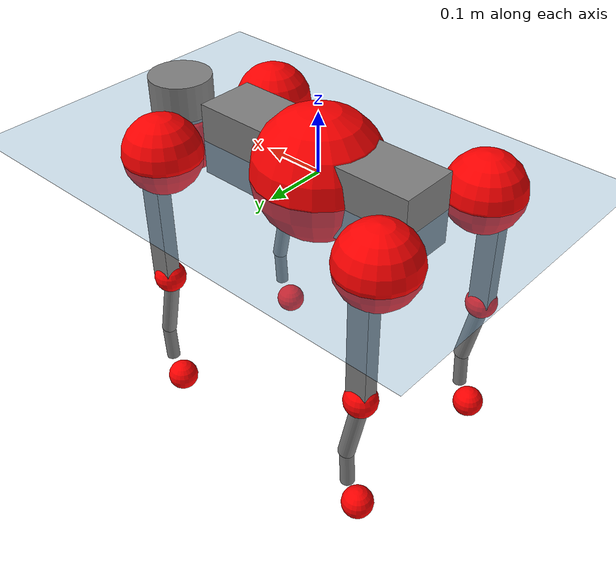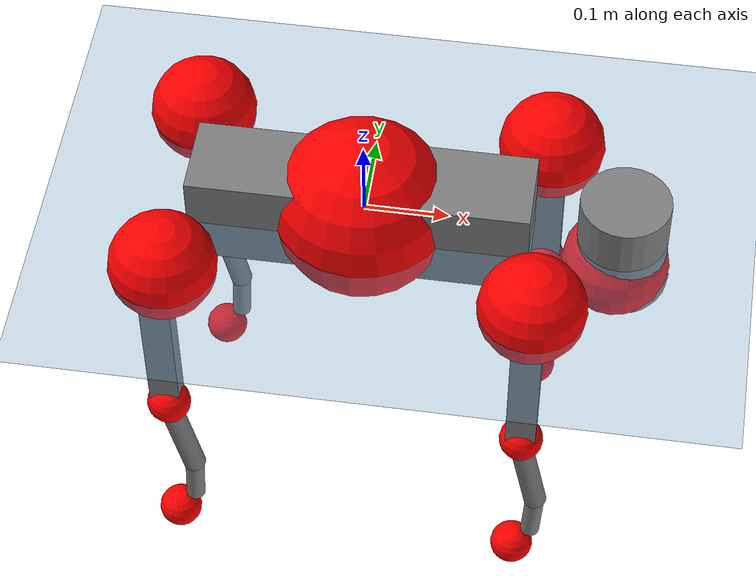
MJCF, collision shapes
<mujoco model="go2">
  <compiler angle="radian" assetdir="assets" balanceinertia="true" inertiafromgeom="false"/>

  <option timestep="0.005" density="1.2" viscosity="2e-05"/>

  <size nkey="1"/>

  <visual>
    <quality shadowsize="8192"/>
    <map shadowclip="0.5"/>
  </visual>

  <default>
    <default class="/">
      <geom contype="0" conaffinity="0" group="1" solref="-1000 -80"/>
      <site size="0.01 0.005 0.005" group="5"/>
      <general forcelimited="true" biastype="affine" gainprm="20" biasprm="0 -20 -0.5"/>
      <default class="go2">
        <joint armature="0.01" damping="0.01" frictionloss="0.2"/>
        <geom condim="1" margin="0.001"/>
        <default class="visual">
          <geom type="mesh" group="2"/>
        </default>
        <default class="collision">
          <geom group="3"/>
          <default class="foot">
            <geom size="0.022 0 0" condim="6" priority="1" friction="0.8 0.02 0.01" solimp="0.015 1 0.022"/>
          </default>
        </default>
        <default class="reward_collision_sphere">
          <geom group="5" rgba="1 0 0 1"/>
        </default>
      </default>
    </default>
  </default>

  <asset>
    <texture type="skybox" colorspace="auto" name="//unnamed_texture_0" builtin="gradient" rgb1="0.95 0.95 0.95" rgb2="0.95 0.95 0.95" width="100" height="600"/>
    <texture type="2d" colorspace="auto" name="texplane" builtin="checker" rgb1="0.345 0.575 0.748" rgb2="0.345 0.575 0.748" markrgb="1 1 1" width="512" height="512"/>
    <material name="MatPlane" class="/" texture="texplane" texuniform="true" texrepeat="2 2" specular="0.9"/>
    <material name="metal" class="/" rgba="0.9 0.95 0.95 1"/>
    <material name="black" class="/" rgba="0 0 0 1"/>
    <material name="white" class="/"/>
    <material name="gray" class="/" rgba="0.671705 0.692426 0.77427 1"/>
    <mesh name="base_0" class="/" file="base_0.obj"/>
    <mesh name="base_1" class="/" file="base_1.obj"/>
    <mesh name="base_2" class="/" file="base_2.obj"/>
    <mesh name="base_3" class="/" file="base_3.obj"/>
    <mesh name="base_4" class="/" file="base_4.obj"/>
    <mesh name="hip_0" class="/" file="hip_0.obj"/>
    <mesh name="hip_1" class="/" file="hip_1.obj"/>
    <mesh name="thigh_0" class="/" file="thigh_0.obj"/>
    <mesh name="thigh_1" class="/" file="thigh_1.obj"/>
    <mesh name="thigh_mirror_0" class="/" file="thigh_mirror_0.obj"/>
    <mesh name="thigh_mirror_1" class="/" file="thigh_mirror_1.obj"/>
    <mesh name="calf_0" class="/" file="calf_0.obj"/>
    <mesh name="calf_1" class="/" file="calf_1.obj"/>
    <mesh name="calf_mirror_0" class="/" file="calf_mirror_0.obj"/>
    <mesh name="calf_mirror_1" class="/" file="calf_mirror_1.obj"/>
    <mesh name="foot" class="/" file="foot.obj"/>
  </asset>

  <worldbody>
    <geom name="floor" class="/" size="100 100 0.125" type="plane" group="0" material="MatPlane"/>
    <light name="toplight_shadow" class="/" pos="0 0 5" dir="0.0990148 0.0990148 -0.990148" type="directional" ambient="0.04 0.04 0.04" diffuse="0.55 0.55 0.55" specular="0.12 0.12 0.12"/>
    <light name="toplight_fill" class="/" pos="0 0 5" dir="0.0990148 0.0990148 -0.990148" type="directional" castshadow="false" ambient="0.04 0.04 0.04" diffuse="0.3 0.3 0.3" specular="0.08 0.08 0.08"/>
    <body name="trunk" childclass="go2" pos="-0.00205356 -0.000751295 0.00139227" quat="1 7.65545e-07 -0.000165455 -0.000211871">
      <inertial pos="0.0296124 0.00407904 -0.00659166" quat="0.00031259 0.712734 0.00938641 0.701371" mass="7.80264" diaginertia="0.151134 0.119946 0.0364528"/>
      <joint name="//unnamed_joint_0" type="free" armature="0" damping="0" frictionloss="0"/>
      <geom name="//unnamed_geom_1" class="visual" material="black" mesh="base_0"/>
      <geom name="//unnamed_geom_2" class="visual" material="black" mesh="base_1"/>
      <geom name="//unnamed_geom_3" class="visual" material="black" mesh="base_2"/>
      <geom name="//unnamed_geom_4" class="visual" material="white" mesh="base_3"/>
      <geom name="//unnamed_geom_5" class="visual" material="gray" mesh="base_4"/>
      <geom name="trunk_1" class="collision" size="0.199343 0.0495443 0.0604069" type="box"/>
      <geom name="trunk_2" class="collision" size="0.0529886 0.0476897" pos="0.304693 0 0.0107261" type="cylinder"/>
      <geom name="trunk_3" class="collision" size="0.0498092" pos="0.313246 0 -0.0643563"/>
      <geom name="//unnamed_geom_9" class="reward_collision_sphere" size="0.105977"/>
      <geom name="//unnamed_geom_10" class="reward_collision_sphere" size="0.0635863" pos="0.299347 0 -0.0482672"/>
      <site name="imu" pos="-0.0534895 -0.00169036 0.071282" size="0.0105977"/>
      <camera name="track" pos="0 -2.07522 0" quat="0.707107 0.707107 0 0" mode="trackcom"/>
      <camera name="ego_camera" pos="0.333559 0 0.0482672" quat="-0.5 -0.5 0.5 0.5"/>
      <body name="FL_hip" pos="0.20953 0.0516539 0.00319511" quat="0.999999 0.000415847 -0.000925552 -0.00066514">
        <inertial pos="-0.00585065 0.00465122 -0.00184948" quat="0.496484 0.500075 0.504391 0.499017" mass="0.877563" diaginertia="0.00134467 0.000812659 0.000735891"/>
        <joint name="FL_hip_joint" pos="0 0 0" axis="1 -0.000576304 -0.000236142" stiffness="0.00840716" range="-1.05291 1.06371" armature="0.0111531" damping="0.00367055" frictionloss="0.229113"/>
        <geom name="//unnamed_geom_11" class="visual" material="metal" mesh="hip_0"/>
        <geom name="//unnamed_geom_12" class="visual" material="gray" mesh="hip_1"/>
        <geom name="//unnamed_geom_13" class="collision" size="0.0487495 0.0211954" pos="0 0.0830088 0" quat="0.707107 0.707107 0 0" type="cylinder"/>
        <geom name="//unnamed_geom_14" class="reward_collision_sphere" size="0.0635863" pos="0 0.0726327 0"/>
        <body name="FL_thigh" pos="0.000521976 0.0931588 -0.000560936" quat="0.999997 -0.0004247 -0.00132944 0.00191111">
          <inertial pos="-0.00282994 -0.0235996 -0.0354612" quat="0.830866 0.0979616 -0.0160741 0.547546" mass="1.37109" diaginertia="0.00814166 0.00740586 0.00124394"/>
          <joint name="FL_thigh_joint" pos="0 0 0" axis="-0.00816277 0.999964 0.00219014" range="-1.65644 3.46019" armature="0.00956186" damping="0" frictionloss="0.218166"/>
          <geom name="//unnamed_geom_15" class="visual" material="metal" mesh="thigh_0"/>
          <geom name="//unnamed_geom_16" class="visual" material="gray" mesh="thigh_1"/>
          <geom name="//unnamed_geom_17" class="collision" size="0.112866 0.0129822 0.0180161" pos="0 0 -0.114232" quat="0.707107 0 0.707107 0" type="box"/>
          <body name="FL_calf" pos="-0.00240475 -0.00453494 -0.228982" quat="0.999999 0.00043328 -0.000513499 -0.000797989">
            <inertial pos="0.006973 0.00175798 -0.151664" quat="0.710561 0.00256403 -0.00546604 0.70361" mass="0.276916" diaginertia="0.00211089 0.00175225 7.53142e-05"/>
            <joint name="FL_calf_joint" pos="0 0 0" axis="-0.00530087 0.999982 0.00279312" stiffness="0.0199684" range="-2.75173 -0.8366" armature="0.011336" damping="0.0117471" frictionloss="0.212625"/>
            <geom name="//unnamed_geom_18" class="visual" material="gray" mesh="calf_0"/>
            <geom name="//unnamed_geom_19" class="visual" material="black" mesh="calf_1"/>
            <geom name="FL_calf0" class="collision" size="0.0127173 0.0635863" pos="0.00855279 0 -0.0643563" quat="0.994493 0 -0.104807 0" type="cylinder"/>
            <geom name="//unnamed_geom_21" class="collision" size="0.0116575 0.0344426" pos="0.021382 0 -0.158746" quat="0.999688 0 0.0249974 0" type="cylinder"/>
            <geom name="//unnamed_geom_22" class="visual" pos="0 0 -0.228465" quat="1 0 0 0" material="black" mesh="foot"/>
            <geom name="FL_foot" class="foot" size="0.0224055" pos="-0.0021382 0 -0.228465"/>
            <geom name="//unnamed_geom_24" class="reward_collision_sphere" size="0.0264943"/>
            <geom name="//unnamed_geom_25" class="reward_collision_sphere" size="0.0264943" pos="-0.0021382 0 -0.228465"/>
            <site name="FL_foot" class="foot" pos="-0.0021382 0 -0.228465" size="0.0105977"/>
          </body>
        </body>
      </body>
      <body name="FR_hip" pos="0.212278 -0.0483741 -0.0014491" quat="1 3.00085e-05 2.24006e-05 8.82372e-06">
        <inertial pos="-0.00455932 0.00536809 0.00129163" quat="0.507892 0.515066 0.506324 0.469457" mass="0.811982" diaginertia="0.00132056 0.000691131 0.000724192"/>
        <joint name="FR_hip_joint" pos="0 0 0" axis="0.999851 -0.0127304 -0.0116292" stiffness="0.00841767" range="-0.999403 1.06566" armature="0.00998409" damping="0.0221764" frictionloss="0.224917"/>
        <geom name="//unnamed_geom_26" class="visual" pos="0 -3.04871e-10 -1.30766e-08" quat="4.63268e-05 1 0 0" material="metal" mesh="hip_0"/>
        <geom name="//unnamed_geom_27" class="visual" pos="0 -4.94233e-10 3.23433e-08" quat="4.63268e-05 1 0 0" material="gray" mesh="hip_1"/>
        <geom name="//unnamed_geom_28" class="collision" size="0.0487495 0.0211954" pos="0 -0.0830088 0" quat="0.707107 0.707107 0 0" type="cylinder"/>
        <geom name="//unnamed_geom_29" class="reward_collision_sphere" size="0.0635863" pos="0 -0.0726327 0"/>
        <body name="FR_thigh" pos="-0.000410333 -0.0983203 0.00437085" quat="0.999998 -0.0014049 0.00112352 -0.000664004">
          <inertial pos="-0.00948781 0.0215328 -0.0344009" quat="0.548931 -0.0180066 0.08375 0.831466" mass="1.28145" diaginertia="0.00819099 0.0071277 0.00113106"/>
          <joint name="FR_thigh_joint" pos="0 0 0" axis="0.00144727 -0.999999 -0.000731197" range="-3.46307 1.52166" armature="0.0112836" damping="0.000367403" frictionloss="0.220397"/>
          <geom name="//unnamed_geom_30" class="visual" material="metal" mesh="thigh_mirror_0"/>
          <geom name="//unnamed_geom_31" class="visual" material="gray" mesh="thigh_mirror_1"/>
          <geom name="//unnamed_geom_32" class="collision" size="0.112866 0.0129822 0.0180161" pos="0 0 -0.114232" quat="0.707107 0 0.707107 0" type="box"/>
          <body name="FR_calf" pos="0.00050801 0.00146405 -0.226255" quat="1 -5.88646e-05 0.000317962 -0.000107365">
            <inertial pos="0.00950427 0.00081307 -0.152639" quat="0.690746 -0.0297631 0.00117065 0.722484" mass="0.27402" diaginertia="0.0020255 0.00168554 7.20496e-05"/>
            <joint name="FR_calf_joint" pos="0 0 0" axis="0.0158766 -0.999868 0.00354462" stiffness="0.0259554" range="0.947805 2.73894" armature="0.00878405" damping="0" frictionloss="0.217379"/>
            <geom name="//unnamed_geom_33" class="visual" material="gray" mesh="calf_mirror_0"/>
            <geom name="//unnamed_geom_34" class="visual" material="black" mesh="calf_mirror_1"/>
            <geom name="FR_calf0" class="collision" size="0.013777 0.0635863" pos="0.010691 0 -0.0643563" quat="0.995004 0 -0.0998334 0" type="cylinder"/>
            <geom name="//unnamed_geom_36" class="collision" size="0.0116575 0.0344426" pos="0.021382 0 -0.158746" quat="0.999688 0 0.0249974 0" type="cylinder"/>
            <geom name="//unnamed_geom_37" class="visual" pos="0 0 -0.228465" quat="1 0 0 0" material="black" mesh="foot"/>
            <geom name="FR_foot" class="foot" size="0.0261441" pos="-0.0021382 0 -0.228465"/>
            <geom name="//unnamed_geom_39" class="reward_collision_sphere" size="0.0264943"/>
            <geom name="//unnamed_geom_40" class="reward_collision_sphere" size="0.0264943" pos="-0.0021382 0 -0.228465"/>
            <site name="FR_foot" class="foot" pos="-0.0021382 0 -0.228465" size="0.0105977"/>
          </body>
        </body>
      </body>
      <body name="RL_hip" pos="-0.211086 0.0499013 0.0045701" quat="1 0.00055182 -0.000320768 -0.000169341">
        <inertial pos="0.00617201 0.000348299 0.00648409" quat="0.501009 0.49326 0.4927 0.512768" mass="0.748398" diaginertia="0.00104274 0.000648001 0.000636187"/>
        <joint name="RL_hip_joint" pos="0 0 0" axis="-0.999873 0.0144052 -0.00682488" range="-1.0439 1.07364" armature="0.0093031" damping="0.0334736" frictionloss="0.209732"/>
        <geom name="//unnamed_geom_41" class="visual" pos="3.05541e-11 0 5.98932e-09" quat="4.63268e-05 0 1 0" material="metal" mesh="hip_0"/>
        <geom name="//unnamed_geom_42" class="visual" pos="4.95319e-11 0 5.31168e-09" quat="4.63268e-05 0 1 0" material="gray" mesh="hip_1"/>
        <geom name="//unnamed_geom_43" class="collision" size="0.0487495 0.0211954" pos="0 0.0830088 0" quat="0.707107 0.707107 0 0" type="cylinder"/>
        <geom name="//unnamed_geom_44" class="reward_collision_sphere" size="0.0635863" pos="0 0.0726327 0"/>
        <body name="RL_thigh" pos="0.000427428 0.0976464 -0.000425553" quat="1 -0.000456659 5.35856e-05 0.000326915">
          <inertial pos="0.0030737 -0.0215757 -0.0291695" quat="0.829377 0.0852276 -0.0192137 0.551816" mass="1.38969" diaginertia="0.00921573 0.00702405 0.00129811"/>
          <joint name="RL_thigh_joint" pos="0 0 0" axis="0.000361467 0.999692 0.0248067" range="-0.522387 4.56918" armature="0.0118571" damping="0.0216613" frictionloss="0.217349"/>
          <geom name="//unnamed_geom_45" class="visual" material="metal" mesh="thigh_0"/>
          <geom name="//unnamed_geom_46" class="visual" material="gray" mesh="thigh_1"/>
          <geom name="//unnamed_geom_47" class="collision" size="0.112866 0.0129822 0.0180161" pos="0 0 -0.114232" quat="0.707107 0 0.707107 0" type="box"/>
          <body name="RL_calf" pos="-0.000493339 -1.62742e-05 -0.229324" quat="1 0.000517224 -0.000320053 -0.000252707">
            <inertial pos="0.00663298 -0.00504169 -0.153302" quat="0.709622 0.0070792 -0.00300631 0.704541" mass="0.262571" diaginertia="0.00193348 0.00151937 7.01113e-05"/>
            <joint name="RL_calf_joint" pos="0 0 0" axis="-0.0121032 0.99989 0.00860502" stiffness="8.65601e-05" range="-2.80345 -0.798192" armature="0.00783506" damping="0" frictionloss="0.249431"/>
            <geom name="//unnamed_geom_48" class="visual" material="gray" mesh="calf_0"/>
            <geom name="//unnamed_geom_49" class="visual" material="black" mesh="calf_1"/>
            <geom name="RL_calf0" class="collision" size="0.013777 0.0635863" pos="0.010691 0 -0.0643563" quat="0.995004 0 -0.0998334 0" type="cylinder"/>
            <geom name="//unnamed_geom_51" class="collision" size="0.0116575 0.0344426" pos="0.021382 0 -0.158746" quat="0.999688 0 0.0249974 0" type="cylinder"/>
            <geom name="//unnamed_geom_52" class="visual" pos="0 0 -0.228465" quat="1 0 0 0" material="black" mesh="foot"/>
            <geom name="RL_foot" class="foot" size="0.0217636" pos="-0.0021382 0 -0.228465"/>
            <geom name="//unnamed_geom_54" class="reward_collision_sphere" size="0.0264943"/>
            <geom name="//unnamed_geom_55" class="reward_collision_sphere" size="0.0264943" pos="-0.0021382 0 -0.228465"/>
            <site name="RL_foot" class="foot" pos="-0.0021382 0 -0.228465" size="0.0105977"/>
          </body>
        </body>
      </body>
      <body name="RR_hip" pos="-0.213855 -0.0464542 0.000787136" quat="0.999999 -0.000734642 1.83755e-05 0.0010763">
        <inertial pos="0.00664486 -0.00229961 0.00562492" quat="0.490213 0.527392 0.479469 0.501655" mass="0.8363" diaginertia="0.00132721 0.000777598 0.000743612"/>
        <joint name="RR_hip_joint" pos="0 0 0" axis="-0.999681 0.0252392 -0.000818338" stiffness="0.00384863" range="-0.956353 1.0445" armature="0.0100659" damping="0.0105859" frictionloss="0.212451"/>
        <geom name="//unnamed_geom_56" class="visual" pos="-3.16445e-11 -3.04871e-10 1.90659e-08" quat="2.14617e-09 4.63268e-05 4.63268e-05 -1" material="metal" mesh="hip_0"/>
        <geom name="//unnamed_geom_57" class="visual" pos="-4.68357e-11 -4.94233e-10 -2.70317e-08" quat="2.14617e-09 4.63268e-05 4.63268e-05 -1" material="gray" mesh="hip_1"/>
        <geom name="//unnamed_geom_58" class="collision" size="0.0487495 0.0211954" pos="0 -0.0830088 0" quat="0.707107 0.707107 0 0" type="cylinder"/>
        <geom name="//unnamed_geom_59" class="reward_collision_sphere" size="0.0635863" pos="0 -0.0726327 0"/>
        <body name="RR_thigh" pos="-0.00604486 -0.0986406 0.00468097" quat="0.999998 -0.000846551 -0.00159338 -0.000846086">
          <inertial pos="-0.00347454 0.0224214 -0.0328814" quat="0.553295 -0.0213298 0.0873714 0.828116" mass="1.43653" diaginertia="0.00871525 0.00696185 0.0012303"/>
          <joint name="RR_thigh_joint" pos="0 0 0" axis="-0.00456725 -0.999967 -0.00674589" range="-4.55477 0.488858" armature="0.00933116" damping="0.00803038" frictionloss="0.218957"/>
          <geom name="//unnamed_geom_60" class="visual" material="metal" mesh="thigh_mirror_0"/>
          <geom name="//unnamed_geom_61" class="visual" material="gray" mesh="thigh_mirror_1"/>
          <geom name="//unnamed_geom_62" class="collision" size="0.112866 0.0129822 0.0180161" pos="0 0 -0.114232" quat="0.707107 0 0.707107 0" type="box"/>
          <body name="RR_calf" pos="0.00249087 -0.00400386 -0.231631" quat="0.999996 0.000414983 -0.000818732 0.00249436">
            <inertial pos="0.00337788 0.00019424 -0.14979" quat="0.702053 -0.0156505 0.00952753 0.711889" mass="0.278258" diaginertia="0.00206402 0.00175759 7.46077e-05"/>
            <joint name="RR_calf_joint" pos="0 0 0" axis="-0.000407067 -1 0.000202402" stiffness="0.00841997" range="0.817982 2.62779" armature="0.0104351" damping="0" frictionloss="0.217915"/>
            <geom name="//unnamed_geom_63" class="visual" material="gray" mesh="calf_mirror_0"/>
            <geom name="//unnamed_geom_64" class="visual" material="black" mesh="calf_mirror_1"/>
            <geom name="RR_calf0" class="collision" size="0.013777 0.0635863" pos="0.010691 0 -0.0643563" quat="0.995004 0 -0.0998334 0" type="cylinder"/>
            <geom name="//unnamed_geom_66" class="collision" size="0.0116575 0.0344426" pos="0.021382 0 -0.158746" quat="0.999688 0 0.0249974 0" type="cylinder"/>
            <geom name="//unnamed_geom_67" class="visual" pos="0 0 -0.228465" quat="1 0 0 0" material="black" mesh="foot"/>
            <geom name="RR_foot" class="foot" size="0.0251499" pos="-0.0021382 0 -0.228465"/>
            <geom name="//unnamed_geom_69" class="reward_collision_sphere" size="0.0264943"/>
            <geom name="//unnamed_geom_70" class="reward_collision_sphere" size="0.0264943" pos="-0.0021382 0 -0.228465"/>
            <site name="RR_foot" class="foot" pos="-0.0021382 0 -0.228465" size="0.0105977"/>
          </body>
        </body>
      </body>
    </body>
  </worldbody>

  <contact>
    <pair class="/" geom1="floor" geom2="FL_foot" name="//unnamed_contact_0"/>
    <pair class="/" geom1="floor" geom2="FR_foot" name="//unnamed_contact_1"/>
    <pair class="/" geom1="floor" geom2="RL_foot" name="//unnamed_contact_2"/>
    <pair class="/" geom1="floor" geom2="RR_foot" name="//unnamed_contact_3"/>
  </contact>

  <actuator>
    <general name="FL_hip" class="/" joint="FL_hip_joint" forcerange="-27.8427 27.8427" gainprm="21.5374" biasprm="0 -21.5374 -0.536991"/>
    <general name="FL_thigh" class="/" joint="FL_thigh_joint" forcerange="-30.5394 30.5394" gainprm="21.5374" biasprm="0 -21.5374 -0.536991"/>
    <general name="FL_calf" class="/" joint="FL_calf_joint" forcerange="-45.4911 45.4911" gainprm="21.5374" biasprm="0 -21.5374 -0.536991"/>
    <general name="FR_hip" class="/" joint="FR_hip_joint" forcerange="-25.6301 25.6301" gainprm="21.5374" biasprm="0 -21.5374 -0.536991"/>
    <general name="FR_thigh" class="/" joint="FR_thigh_joint" forcerange="-23.1907 23.1907" gainprm="21.5374" biasprm="0 -21.5374 -0.536991"/>
    <general name="FR_calf" class="/" joint="FR_calf_joint" forcerange="-43.8109 43.8109" gainprm="21.5374" biasprm="0 -21.5374 -0.536991"/>
    <general name="RL_hip" class="/" joint="RL_hip_joint" forcerange="-25.6357 25.6357" gainprm="21.5374" biasprm="0 -21.5374 -0.536991"/>
    <general name="RL_thigh" class="/" joint="RL_thigh_joint" forcerange="-27.3771 27.3771" gainprm="21.5374" biasprm="0 -21.5374 -0.536991"/>
    <general name="RL_calf" class="/" joint="RL_calf_joint" forcerange="-50.3814 50.3814" gainprm="21.5374" biasprm="0 -21.5374 -0.536991"/>
    <general name="RR_hip" class="/" joint="RR_hip_joint" forcerange="-22.9951 22.9951" gainprm="21.5374" biasprm="0 -21.5374 -0.536991"/>
    <general name="RR_thigh" class="/" joint="RR_thigh_joint" forcerange="-21.3013 21.3013" gainprm="21.5374" biasprm="0 -21.5374 -0.536991"/>
    <general name="RR_calf" class="/" joint="RR_calf_joint" forcerange="-52.5233 52.5233" gainprm="21.5374" biasprm="0 -21.5374 -0.536991"/>
  </actuator>

  <sensor>
    <gyro site="imu" name="imu_angular_velocity"/>
    <velocimeter site="imu" name="imu_linear_velocity"/>
    <framelinvel objtype="site" objname="FL_foot" name="FL_foot_global_linear_velocity"/>
    <framelinvel objtype="site" objname="FR_foot" name="FR_foot_global_linear_velocity"/>
    <framelinvel objtype="site" objname="RL_foot" name="RL_foot_global_linear_velocity"/>
    <framelinvel objtype="site" objname="RR_foot" name="RR_foot_global_linear_velocity"/>
  </sensor>

  <keyframe>
    <key name="home" qpos="0 0 0.325 1 0 0 0 0.1 0.8 -1.5 -0.1 -0.8 1.5 -0.1 0.8 -1.5 0.1 -0.8 1.5"/>
  </keyframe>
</mujoco>
